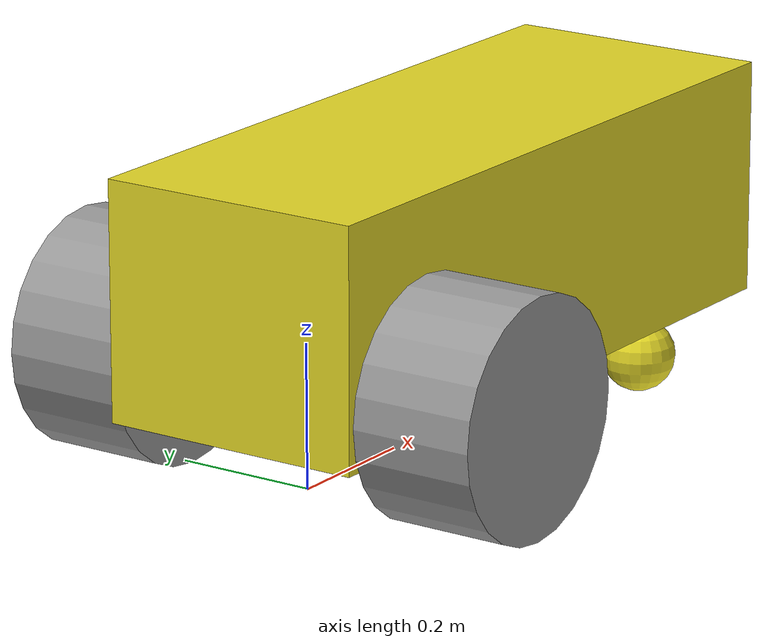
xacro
<?xml version="1.0"?>
<!-- Revolute-Revolute Manipulator -->
<robot name="course_agv" xmlns:xacro="http://www.ros.org/wiki/xacro">

    <xacro:property name="PI" value="3.1415926535897931" />
    <xacro:property name="mass" value="50" />
    <xacro:property name="length" value="0.978" />
    <xacro:property name="width" value="0.376" />
    <xacro:property name="height" value="0.33" />
    <xacro:property name="chassis_height" value="0.103" />
    <xacro:property name="caster_radius" value="${chassis_height/2}" />
    <xacro:property name="wheel_mass" value="0.5" />
    <xacro:property name="caster_mass" value="${wheel_mass}" />
    <xacro:property name="wheel_radius" value="0.164" />
    <xacro:property name="wheel_thickness" value="0.1725" />
    <xacro:property name="base_to_back" value="0.1725" />
    <xacro:property name="base_to_caster" value="0.6" />
    <xacro:property name="center_span" value="0.0" />

    <xacro:property name="urdf_src" value="$(find clcbs_gazebo)/models/agent/urdf/" />

    <!-- Import all Gazebo-customization elements, including Gazebo colors -->
    <xacro:include filename="${urdf_src}/agent_sim.gazebo" />
    <!-- Import Rviz colors -->
    <xacro:include filename="${urdf_src}/materials.xacro" />

    <!-- joints and links-->

    <link name="robot_base" />

    <!-- left wheel -->
    <joint name="agent_leftwheel_joint" type="continuous">
        <parent link="robot_base" />
        <child link="agent_leftwheel_link" />
        <origin rpy="0 ${PI/2.0} ${PI/2.0}" xyz="0.0 ${(width / 2.0 + wheel_thickness / 2.0)} ${wheel_radius}" />
        <axis xyz="9.00000000e-05   9.00000000e-05   1.00000000e+00" />
        <limit effort="100" lower="0" upper="0" velocity="10" />
    </joint>
    <link name="agent_leftwheel_link">
        <inertial>
            <mass value="${wheel_mass}" />
            <origin rpy="0 0 0" xyz="0 0 0" />
            <inertia ixx="0" ixy="0" ixz="0" iyy="0" iyz="0" izz="0" />
        </inertial>
        <collision>
            <origin rpy="0 0 0" xyz="0.0 0.0 0.0" />
            <geometry>
                <cylinder length="${wheel_thickness}" radius="${wheel_radius}" />
            </geometry>
        </collision>
        <visual>
            <origin rpy="0 0 0" xyz="0.0 0.0 0.0" />
            <geometry>
                <cylinder length="${wheel_thickness}" radius="${wheel_radius}" />
            </geometry>
            <material name="grey" />
        </visual>
    </link>

    <!-- right wheel -->
    <joint name="agent_rightwheel_joint" type="continuous">
        <parent link="robot_base" />
        <child link="agent_rightwheel_link" />
        <origin rpy="0 ${PI/2.0} ${PI/2.0}" xyz="0.0 ${-(width / 2.0 + wheel_thickness / 2.0)}  ${wheel_radius}" />
        <axis xyz="9.00000000e-05   9.00000000e-05   1.00000000e+00" />
        <limit effort="100" lower="0" upper="0" velocity="10" />
    </joint>
    <link name="agent_rightwheel_link">
        <inertial>
            <mass value="${wheel_mass}" />
            <origin rpy="0 0 0" xyz="0 0 0" />
            <inertia ixx="0" ixy="0" ixz="0" iyy="0" iyz="0" izz="0" />
        </inertial>
        <collision>
            <origin rpy="0 0 0" xyz="0.0 0.0 0.0" />
            <geometry>
                <cylinder length="${wheel_thickness}" radius="${wheel_radius}" />
            </geometry>
        </collision>
        <visual>
            <origin rpy="0 0 0" xyz="0.0 0.0 0.0" />
            <geometry>
                <cylinder length="${wheel_thickness}" radius="${wheel_radius}" />
            </geometry>
            <material name="grey" />
        </visual>
    </link>

    <!-- chassis -->
    <joint name="agent_chassis_joint" type="fixed">
        <parent link="robot_base" />
        <child link="robot_chassis" />
        <origin xyz="${-center_span} 0.0 0.0" />
    </joint>
    <link name="robot_chassis">
        <inertial>
            <mass value="${mass}" />
            <origin rpy="0 0 0" xyz="${length / 2 - base_to_back} 0.0 ${height / 2.0 + chassis_height}" /> <!-- CHANGE HERE TO SEE INFLUENCE-->
            <inertia ixx="${mass / 12.0 * (width*width+height*height)}" ixy="0" ixz="0"
                iyy="${mass / 12.0 * (length*length + height*height)}" iyz="0" izz="${mass / 12.0 * (width*width + length*length)}" />
        </inertial>
        <collision>
            <origin rpy="0 0 0" xyz="${length / 2 - base_to_back} 0.0 ${height / 2.0 + chassis_height}" />
            <geometry>
                <box size="${length} ${width} ${height}" />
            </geometry>
        </collision>
        <visual>
            <origin rpy="0 0 0" xyz="${length / 2 - base_to_back} 0.0 ${height / 2.0 + chassis_height}" />
            <geometry>
                <box size="${length} ${width} ${height}" />
            </geometry>
            <material name="yellow" />
        </visual>
        <inertial>
            <mass value="${caster_mass}" />
            <origin rpy="0 0 0" xyz="${base_to_caster} ${width / 2 - caster_radius} ${caster_radius}" />
            <inertia ixx="${2.0 / 5.0 * mass * caster_radius * caster_radius}" ixy="0" ixz="0"
                iyy="${2.0 / 5.0 * mass * caster_radius * caster_radius}" iyz="0" izz="${2.0 / 5.0 * mass * caster_radius * caster_radius}" />
        </inertial>
        <collision>
            <origin rpy="0 0 0" xyz="${base_to_caster} ${width / 2 - caster_radius} ${caster_radius}" />
            <geometry>
                <sphere radius="${caster_radius}" />
            </geometry>
        </collision>
        <visual>
            <origin rpy="0 0 0" xyz="${base_to_caster} ${width / 2 - caster_radius} ${caster_radius}" />
            <geometry>
                <sphere radius="${caster_radius}" />
            </geometry>
            <material name="yellow" />
        </visual>
        <inertial>
            <mass value="${caster_mass}" />
            <origin rpy="0 0 0" xyz="${base_to_caster} ${-width / 2 - caster_radius} ${caster_radius}" />
            <inertia ixx="${2.0 / 5.0 * mass * caster_radius * caster_radius}" ixy="0" ixz="0"
                iyy="${2.0 / 5.0 * mass * caster_radius * caster_radius}" iyz="0" izz="${2.0 / 5.0 * mass * caster_radius * caster_radius}" />
        </inertial>
        <collision>
            <origin rpy="0 0 0" xyz="${base_to_caster} ${-width / 2 + caster_radius} ${caster_radius}" />
            <geometry>
                <sphere radius="${caster_radius}" />
            </geometry>
        </collision>
        <visual>
            <origin rpy="0 0 0" xyz="${base_to_caster} ${-width / 2 + caster_radius} ${caster_radius}" />
            <geometry>
                <sphere radius="${caster_radius}" />
            </geometry>
            <material name="yellow" />
        </visual>
    </link>

    <transmission name="tran_left_wheel">
        <type>transmission_interface/SimpleTransmission</type>
        <joint name="agent_leftwheel_joint">
            <hardwareInterface>hardware_interface/VelocityJointInterface</hardwareInterface>
        </joint>
        <actuator name="motor_left">
            <hardwareInterface>hardware_interface/VelocityJointInterface</hardwareInterface>
            <mechanicalReduction>1</mechanicalReduction>
        </actuator>
    </transmission>

    <transmission name="tran_right_wheel">
        <type>transmission_interface/SimpleTransmission</type>
        <joint name="agent_rightwheel_joint">
            <hardwareInterface>hardware_interface/VelocityJointInterface</hardwareInterface>
        </joint>
        <actuator name="motor_right">
            <hardwareInterface>hardware_interface/VelocityJointInterface</hardwareInterface>
            <mechanicalReduction>1</mechanicalReduction>
        </actuator>
    </transmission>
</robot>
